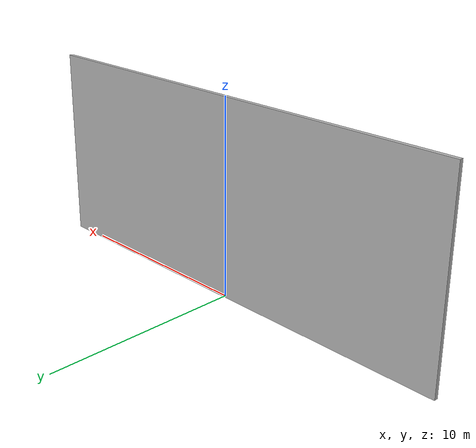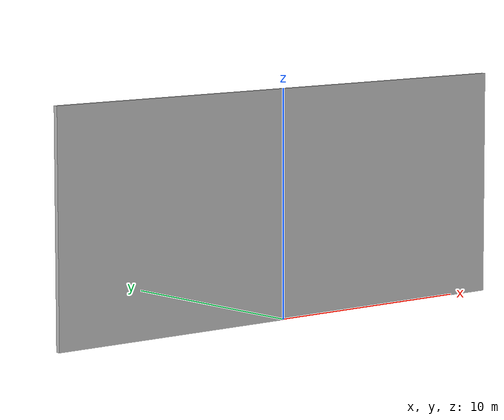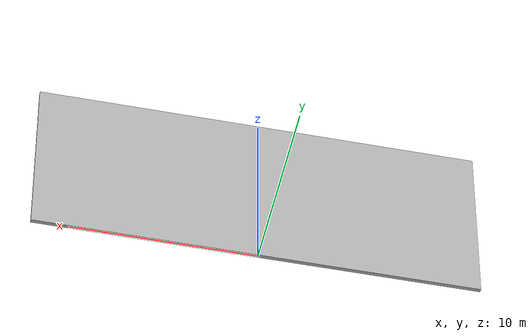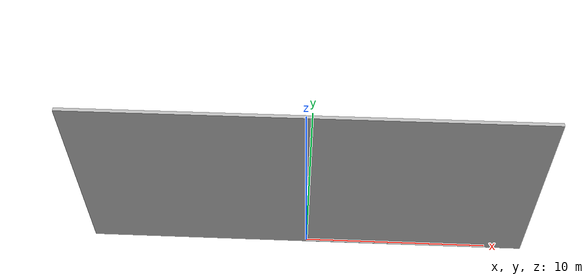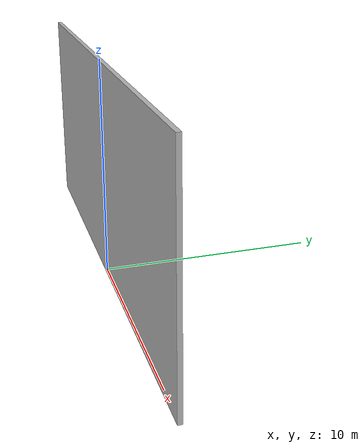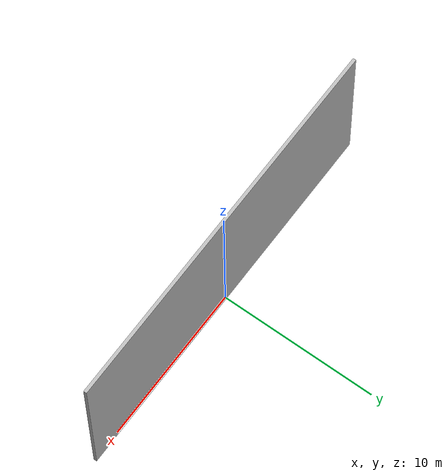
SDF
<?xml version="1.0" ?>

<sdf version="1.5">
<model name='concrete_2400_20_1000'>
      <static>1</static>
      <link name="link">
        <pose>0 0 5.0 0 0 0</pose>

        <visual name="visual">
          <geometry>
            <box>
              <size>24.0 0.2 10.0</size>
            </box>
          </geometry>
          <material>
            <script>
              <uri>model:///home/stibipet/mrs_workspace/src/radiation_nodes/gazebo_rad_obstacle/gazebo_models/materials/scripts</uri>
              <uri>model:///home/stibipet/mrs_workspace/src/radiation_nodes/gazebo_rad_obstacle/gazebo_models/materials/textures/</uri>
              <name>concrete/Image</name>
            </script>
          </material>
        </visual>

      </link>

      <plugin name='concrete' filename='libgazebo_rad_obstacle.so'>
        <depth>24.0</depth>
        <width>0.2</width>
        <height>10.0</height>
        <material>concrete</material>
        <density>2.3</density> <!-- g/cm^3 -->
        <mac60kev>0.266</mac60kev> <!-- cm^2/g -->
        <mac600kev>0.06236</mac600kev> <!-- cm^2/g -->
      </plugin>

    </model>
  </sdf>
